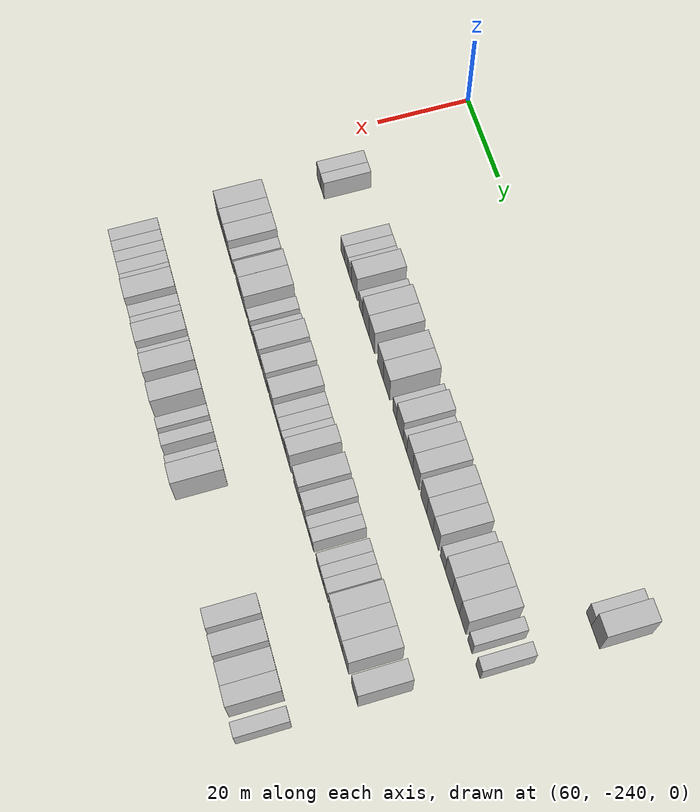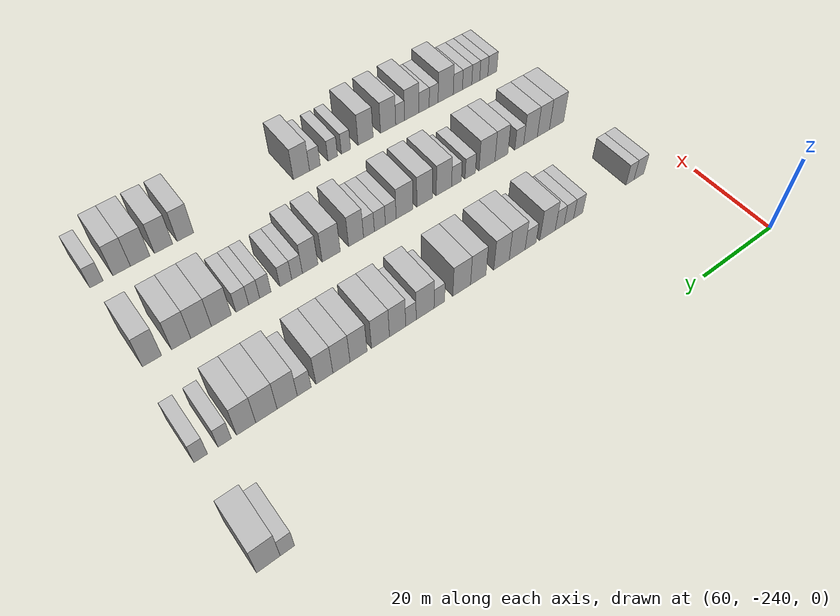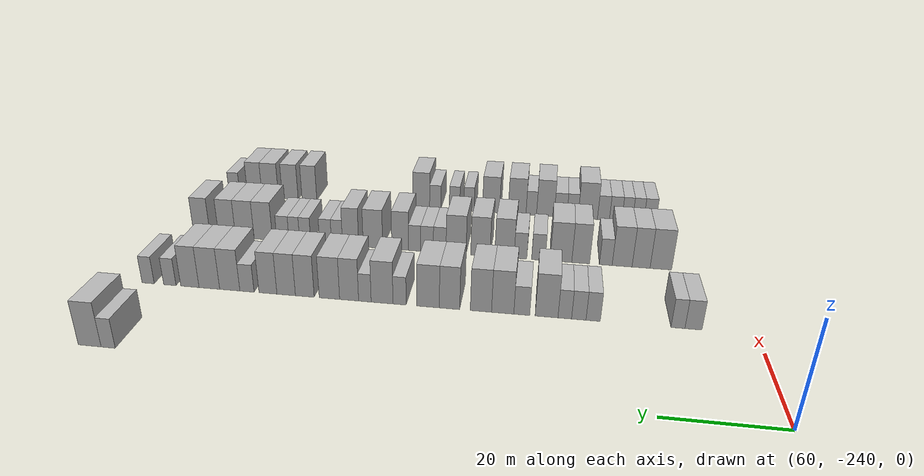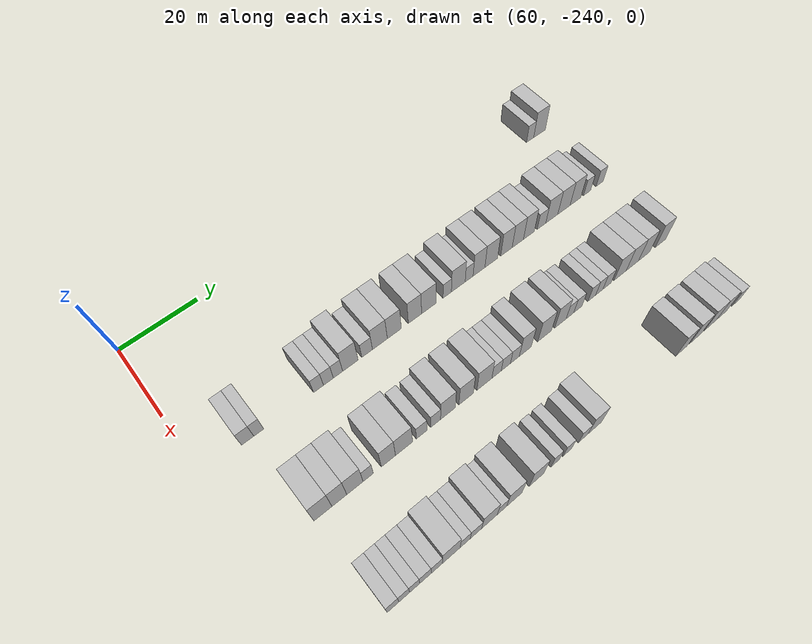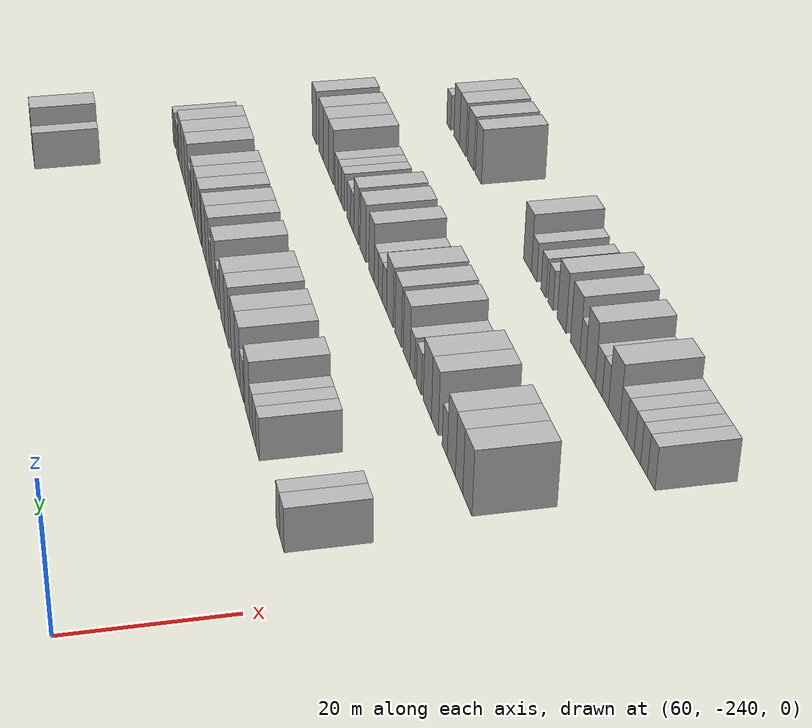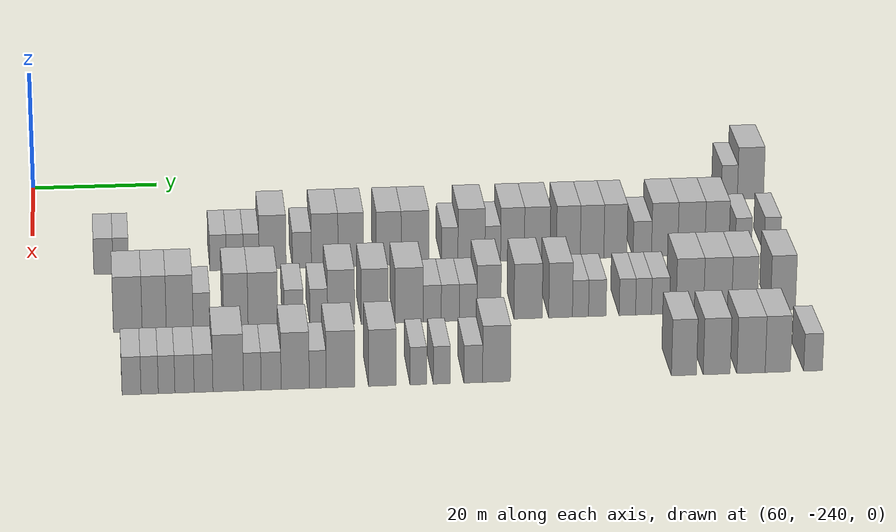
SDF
<sdf version="1.6">
 <world name="default">
  <model name="building_447">
   <static>1</static>
   <pose>69.0000 -127.5597 0 0.000000 0.000000 0.000000</pose>
   <link name="link">
    <pose>0 0 3.00 0 0 0</pose>
    <collision name="collision"><geometry><box><size>10.0000 2.6328 6.0000</size></box></geometry></collision>
    <visual name="visual">
     <cast_shadows>0</cast_shadows>
     <geometry><box><size>10.0000 2.6328 6.0000</size></box></geometry>
     <material>
      <script>
       <uri>model://HANNAS_wall/materials/scripts</uri>
       <uri>model://HANNAS_wall/materials/textures</uri>
       <name>vrc/HANNAS_wall</name>
      </script>
     </material>
    </visual>
   </link>
  </model>
  <model name="building_448">
   <static>1</static>
   <pose>69.0000 -124.0990 0 0.000000 0.000000 0.000000</pose>
   <link name="link">
    <pose>0 0 4.50 0 0 0</pose>
    <collision name="collision"><geometry><box><size>10.0000 4.2888 9.0000</size></box></geometry></collision>
    <visual name="visual">
     <cast_shadows>0</cast_shadows>
     <geometry><box><size>10.0000 4.2888 9.0000</size></box></geometry>
     <material>
      <script>
       <uri>model://HANNAS_wall/materials/scripts</uri>
       <uri>model://HANNAS_wall/materials/textures</uri>
       <name>vrc/HANNAS_wall</name>
      </script>
     </material>
    </visual>
   </link>
  </model>
  <model name="building_606">
   <static>1</static>
   <pose>91.0000 -228.9988 0 0.000000 0.000000 0.000000</pose>
   <link name="link">
    <pose>0 0 3.00 0 0 0</pose>
    <collision name="collision"><geometry><box><size>10.0000 2.9796 6.0000</size></box></geometry></collision>
    <visual name="visual">
     <cast_shadows>0</cast_shadows>
     <geometry><box><size>10.0000 2.9796 6.0000</size></box></geometry>
     <material>
      <script>
       <uri>model://HANNAS_wall/materials/scripts</uri>
       <uri>model://HANNAS_wall/materials/textures</uri>
       <name>vrc/HANNAS_wall</name>
      </script>
     </material>
    </visual>
   </link>
  </model>
  <model name="building_607">
   <static>1</static>
   <pose>91.0000 -226.2939 0 0.000000 0.000000 0.000000</pose>
   <link name="link">
    <pose>0 0 3.00 0 0 0</pose>
    <collision name="collision"><geometry><box><size>10.0000 2.4302 6.0000</size></box></geometry></collision>
    <visual name="visual">
     <cast_shadows>0</cast_shadows>
     <geometry><box><size>10.0000 2.4302 6.0000</size></box></geometry>
     <material>
      <script>
       <uri>model://HANNAS_wall/materials/scripts</uri>
       <uri>model://HANNAS_wall/materials/textures</uri>
       <name>vrc/HANNAS_wall</name>
      </script>
     </material>
    </visual>
   </link>
  </model>
  <model name="building_608">
   <static>1</static>
   <pose>91.0000 -211.2107 0 0.000000 0.000000 0.000000</pose>
   <link name="link">
    <pose>0 0 3.00 0 0 0</pose>
    <collision name="collision"><geometry><box><size>10.0000 2.5787 6.0000</size></box></geometry></collision>
    <visual name="visual">
     <cast_shadows>0</cast_shadows>
     <geometry><box><size>10.0000 2.5787 6.0000</size></box></geometry>
     <material>
      <script>
       <uri>model://HANNAS_wall/materials/scripts</uri>
       <uri>model://HANNAS_wall/materials/textures</uri>
       <name>vrc/HANNAS_wall</name>
      </script>
     </material>
    </visual>
   </link>
  </model>
  <model name="building_609">
   <static>1</static>
   <pose>91.0000 -208.6114 0 0.000000 0.000000 0.000000</pose>
   <link name="link">
    <pose>0 0 3.00 0 0 0</pose>
    <collision name="collision"><geometry><box><size>10.0000 2.6199 6.0000</size></box></geometry></collision>
    <visual name="visual">
     <cast_shadows>0</cast_shadows>
     <geometry><box><size>10.0000 2.6199 6.0000</size></box></geometry>
     <material>
      <script>
       <uri>model://HANNAS_wall/materials/scripts</uri>
       <uri>model://HANNAS_wall/materials/textures</uri>
       <name>vrc/HANNAS_wall</name>
      </script>
     </material>
    </visual>
   </link>
  </model>
  <model name="building_610">
   <static>1</static>
   <pose>91.0000 -206.0637 0 0.000000 0.000000 0.000000</pose>
   <link name="link">
    <pose>0 0 3.00 0 0 0</pose>
    <collision name="collision"><geometry><box><size>10.0000 2.4756 6.0000</size></box></geometry></collision>
    <visual name="visual">
     <cast_shadows>0</cast_shadows>
     <geometry><box><size>10.0000 2.4756 6.0000</size></box></geometry>
     <material>
      <script>
       <uri>model://HANNAS_wall/materials/scripts</uri>
       <uri>model://HANNAS_wall/materials/textures</uri>
       <name>vrc/HANNAS_wall</name>
      </script>
     </material>
    </visual>
   </link>
  </model>
  <model name="building_611">
   <static>1</static>
   <pose>91.0000 -202.7370 0 0.000000 0.000000 0.000000</pose>
   <link name="link">
    <pose>0 0 4.50 0 0 0</pose>
    <collision name="collision"><geometry><box><size>10.0000 4.1777 9.0000</size></box></geometry></collision>
    <visual name="visual">
     <cast_shadows>0</cast_shadows>
     <geometry><box><size>10.0000 4.1777 9.0000</size></box></geometry>
     <material>
      <script>
       <uri>model://HANNAS_wall/materials/scripts</uri>
       <uri>model://HANNAS_wall/materials/textures</uri>
       <name>vrc/HANNAS_wall</name>
      </script>
     </material>
    </visual>
   </link>
  </model>
  <model name="building_612">
   <static>1</static>
   <pose>91.0000 -198.1761 0 0.000000 0.000000 0.000000</pose>
   <link name="link">
    <pose>0 0 3.00 0 0 0</pose>
    <collision name="collision"><geometry><box><size>10.0000 2.9441 6.0000</size></box></geometry></collision>
    <visual name="visual">
     <cast_shadows>0</cast_shadows>
     <geometry><box><size>10.0000 2.9441 6.0000</size></box></geometry>
     <material>
      <script>
       <uri>model://HANNAS_wall/materials/scripts</uri>
       <uri>model://HANNAS_wall/materials/textures</uri>
       <name>vrc/HANNAS_wall</name>
      </script>
     </material>
    </visual>
   </link>
  </model>
  <model name="building_613">
   <static>1</static>
   <pose>91.0000 -194.6259 0 0.000000 0.000000 0.000000</pose>
   <link name="link">
    <pose>0 0 4.50 0 0 0</pose>
    <collision name="collision"><geometry><box><size>10.0000 4.1564 9.0000</size></box></geometry></collision>
    <visual name="visual">
     <cast_shadows>0</cast_shadows>
     <geometry><box><size>10.0000 4.1564 9.0000</size></box></geometry>
     <material>
      <script>
       <uri>model://HANNAS_wall/materials/scripts</uri>
       <uri>model://HANNAS_wall/materials/textures</uri>
       <name>vrc/HANNAS_wall</name>
      </script>
     </material>
    </visual>
   </link>
  </model>
  <model name="building_614">
   <static>1</static>
   <pose>91.0000 -190.5553 0 0.000000 0.000000 0.000000</pose>
   <link name="link">
    <pose>0 0 4.50 0 0 0</pose>
    <collision name="collision"><geometry><box><size>10.0000 3.9848 9.0000</size></box></geometry></collision>
    <visual name="visual">
     <cast_shadows>0</cast_shadows>
     <geometry><box><size>10.0000 3.9848 9.0000</size></box></geometry>
     <material>
      <script>
       <uri>model://HANNAS_wall/materials/scripts</uri>
       <uri>model://HANNAS_wall/materials/textures</uri>
       <name>vrc/HANNAS_wall</name>
      </script>
     </material>
    </visual>
   </link>
  </model>
  <model name="building_615">
   <static>1</static>
   <pose>91.0000 -184.6290 0 0.000000 0.000000 0.000000</pose>
   <link name="link">
    <pose>0 0 4.50 0 0 0</pose>
    <collision name="collision"><geometry><box><size>10.0000 3.8677 9.0000</size></box></geometry></collision>
    <visual name="visual">
     <cast_shadows>0</cast_shadows>
     <geometry><box><size>10.0000 3.8677 9.0000</size></box></geometry>
     <material>
      <script>
       <uri>model://HANNAS_wall/materials/scripts</uri>
       <uri>model://HANNAS_wall/materials/textures</uri>
       <name>vrc/HANNAS_wall</name>
      </script>
     </material>
    </visual>
   </link>
  </model>
  <model name="building_616">
   <static>1</static>
   <pose>91.0000 -180.5141 0 0.000000 0.000000 0.000000</pose>
   <link name="link">
    <pose>0 0 4.50 0 0 0</pose>
    <collision name="collision"><geometry><box><size>10.0000 4.3622 9.0000</size></box></geometry></collision>
    <visual name="visual">
     <cast_shadows>0</cast_shadows>
     <geometry><box><size>10.0000 4.3622 9.0000</size></box></geometry>
     <material>
      <script>
       <uri>model://HANNAS_wall/materials/scripts</uri>
       <uri>model://HANNAS_wall/materials/textures</uri>
       <name>vrc/HANNAS_wall</name>
      </script>
     </material>
    </visual>
   </link>
  </model>
  <model name="building_617">
   <static>1</static>
   <pose>91.0000 -175.0640 0 0.000000 0.000000 0.000000</pose>
   <link name="link">
    <pose>0 0 3.00 0 0 0</pose>
    <collision name="collision"><geometry><box><size>10.0000 2.5380 6.0000</size></box></geometry></collision>
    <visual name="visual">
     <cast_shadows>0</cast_shadows>
     <geometry><box><size>10.0000 2.5380 6.0000</size></box></geometry>
     <material>
      <script>
       <uri>model://HANNAS_wall/materials/scripts</uri>
       <uri>model://HANNAS_wall/materials/textures</uri>
       <name>vrc/HANNAS_wall</name>
      </script>
     </material>
    </visual>
   </link>
  </model>
  <model name="building_618">
   <static>1</static>
   <pose>91.0000 -171.6782 0 0.000000 0.000000 0.000000</pose>
   <link name="link">
    <pose>0 0 4.50 0 0 0</pose>
    <collision name="collision"><geometry><box><size>10.0000 4.2336 9.0000</size></box></geometry></collision>
    <visual name="visual">
     <cast_shadows>0</cast_shadows>
     <geometry><box><size>10.0000 4.2336 9.0000</size></box></geometry>
     <material>
      <script>
       <uri>model://HANNAS_wall/materials/scripts</uri>
       <uri>model://HANNAS_wall/materials/textures</uri>
       <name>vrc/HANNAS_wall</name>
      </script>
     </material>
    </visual>
   </link>
  </model>
  <model name="building_619">
   <static>1</static>
   <pose>91.0000 -168.3328 0 0.000000 0.000000 0.000000</pose>
   <link name="link">
    <pose>0 0 3.00 0 0 0</pose>
    <collision name="collision"><geometry><box><size>10.0000 2.4574 6.0000</size></box></geometry></collision>
    <visual name="visual">
     <cast_shadows>0</cast_shadows>
     <geometry><box><size>10.0000 2.4574 6.0000</size></box></geometry>
     <material>
      <script>
       <uri>model://HANNAS_wall/materials/scripts</uri>
       <uri>model://HANNAS_wall/materials/textures</uri>
       <name>vrc/HANNAS_wall</name>
      </script>
     </material>
    </visual>
   </link>
  </model>
  <model name="building_620">
   <static>1</static>
   <pose>91.0000 -165.2411 0 0.000000 0.000000 0.000000</pose>
   <link name="link">
    <pose>0 0 4.50 0 0 0</pose>
    <collision name="collision"><geometry><box><size>10.0000 3.7260 9.0000</size></box></geometry></collision>
    <visual name="visual">
     <cast_shadows>0</cast_shadows>
     <geometry><box><size>10.0000 3.7260 9.0000</size></box></geometry>
     <material>
      <script>
       <uri>model://HANNAS_wall/materials/scripts</uri>
       <uri>model://HANNAS_wall/materials/textures</uri>
       <name>vrc/HANNAS_wall</name>
      </script>
     </material>
    </visual>
   </link>
  </model>
  <model name="building_621">
   <static>1</static>
   <pose>91.0000 -161.3560 0 0.000000 0.000000 0.000000</pose>
   <link name="link">
    <pose>0 0 4.50 0 0 0</pose>
    <collision name="collision"><geometry><box><size>10.0000 4.0442 9.0000</size></box></geometry></collision>
    <visual name="visual">
     <cast_shadows>0</cast_shadows>
     <geometry><box><size>10.0000 4.0442 9.0000</size></box></geometry>
     <material>
      <script>
       <uri>model://HANNAS_wall/materials/scripts</uri>
       <uri>model://HANNAS_wall/materials/textures</uri>
       <name>vrc/HANNAS_wall</name>
      </script>
     </material>
    </visual>
   </link>
  </model>
  <model name="building_622">
   <static>1</static>
   <pose>91.0000 -156.4585 0 0.000000 0.000000 0.000000</pose>
   <link name="link">
    <pose>0 0 4.50 0 0 0</pose>
    <collision name="collision"><geometry><box><size>10.0000 3.7508 9.0000</size></box></geometry></collision>
    <visual name="visual">
     <cast_shadows>0</cast_shadows>
     <geometry><box><size>10.0000 3.7508 9.0000</size></box></geometry>
     <material>
      <script>
       <uri>model://HANNAS_wall/materials/scripts</uri>
       <uri>model://HANNAS_wall/materials/textures</uri>
       <name>vrc/HANNAS_wall</name>
      </script>
     </material>
    </visual>
   </link>
  </model>
  <model name="building_623">
   <static>1</static>
   <pose>91.0000 -152.7215 0 0.000000 0.000000 0.000000</pose>
   <link name="link">
    <pose>0 0 4.50 0 0 0</pose>
    <collision name="collision"><geometry><box><size>10.0000 3.7233 9.0000</size></box></geometry></collision>
    <visual name="visual">
     <cast_shadows>0</cast_shadows>
     <geometry><box><size>10.0000 3.7233 9.0000</size></box></geometry>
     <material>
      <script>
       <uri>model://HANNAS_wall/materials/scripts</uri>
       <uri>model://HANNAS_wall/materials/textures</uri>
       <name>vrc/HANNAS_wall</name>
      </script>
     </material>
    </visual>
   </link>
  </model>
  <model name="building_624">
   <static>1</static>
   <pose>91.0000 -149.0450 0 0.000000 0.000000 0.000000</pose>
   <link name="link">
    <pose>0 0 4.50 0 0 0</pose>
    <collision name="collision"><geometry><box><size>10.0000 3.6298 9.0000</size></box></geometry></collision>
    <visual name="visual">
     <cast_shadows>0</cast_shadows>
     <geometry><box><size>10.0000 3.6298 9.0000</size></box></geometry>
     <material>
      <script>
       <uri>model://HANNAS_wall/materials/scripts</uri>
       <uri>model://HANNAS_wall/materials/textures</uri>
       <name>vrc/HANNAS_wall</name>
      </script>
     </material>
    </visual>
   </link>
  </model>
  <model name="building_625">
   <static>1</static>
   <pose>91.0000 -144.7831 0 0.000000 0.000000 0.000000</pose>
   <link name="link">
    <pose>0 0 3.00 0 0 0</pose>
    <collision name="collision"><geometry><box><size>10.0000 2.8939 6.0000</size></box></geometry></collision>
    <visual name="visual">
     <cast_shadows>0</cast_shadows>
     <geometry><box><size>10.0000 2.8939 6.0000</size></box></geometry>
     <material>
      <script>
       <uri>model://HANNAS_wall/materials/scripts</uri>
       <uri>model://HANNAS_wall/materials/textures</uri>
       <name>vrc/HANNAS_wall</name>
      </script>
     </material>
    </visual>
   </link>
  </model>
  <model name="building_626">
   <static>1</static>
   <pose>91.0000 -141.2596 0 0.000000 0.000000 0.000000</pose>
   <link name="link">
    <pose>0 0 4.50 0 0 0</pose>
    <collision name="collision"><geometry><box><size>10.0000 4.1532 9.0000</size></box></geometry></collision>
    <visual name="visual">
     <cast_shadows>0</cast_shadows>
     <geometry><box><size>10.0000 4.1532 9.0000</size></box></geometry>
     <material>
      <script>
       <uri>model://HANNAS_wall/materials/scripts</uri>
       <uri>model://HANNAS_wall/materials/textures</uri>
       <name>vrc/HANNAS_wall</name>
      </script>
     </material>
    </visual>
   </link>
  </model>
  <model name="building_627">
   <static>1</static>
   <pose>91.0000 -137.0448 0 0.000000 0.000000 0.000000</pose>
   <link name="link">
    <pose>0 0 4.50 0 0 0</pose>
    <collision name="collision"><geometry><box><size>10.0000 4.2763 9.0000</size></box></geometry></collision>
    <visual name="visual">
     <cast_shadows>0</cast_shadows>
     <geometry><box><size>10.0000 4.2763 9.0000</size></box></geometry>
     <material>
      <script>
       <uri>model://HANNAS_wall/materials/scripts</uri>
       <uri>model://HANNAS_wall/materials/textures</uri>
       <name>vrc/HANNAS_wall</name>
      </script>
     </material>
    </visual>
   </link>
  </model>
  <model name="building_628">
   <static>1</static>
   <pose>91.0000 -133.0051 0 0.000000 0.000000 0.000000</pose>
   <link name="link">
    <pose>0 0 4.50 0 0 0</pose>
    <collision name="collision"><geometry><box><size>10.0000 3.8031 9.0000</size></box></geometry></collision>
    <visual name="visual">
     <cast_shadows>0</cast_shadows>
     <geometry><box><size>10.0000 3.8031 9.0000</size></box></geometry>
     <material>
      <script>
       <uri>model://HANNAS_wall/materials/scripts</uri>
       <uri>model://HANNAS_wall/materials/textures</uri>
       <name>vrc/HANNAS_wall</name>
      </script>
     </material>
    </visual>
   </link>
  </model>
  <model name="building_629">
   <static>1</static>
   <pose>91.0000 -128.8083 0 0.000000 0.000000 0.000000</pose>
   <link name="link">
    <pose>0 0 3.00 0 0 0</pose>
    <collision name="collision"><geometry><box><size>10.0000 2.5906 6.0000</size></box></geometry></collision>
    <visual name="visual">
     <cast_shadows>0</cast_shadows>
     <geometry><box><size>10.0000 2.5906 6.0000</size></box></geometry>
     <material>
      <script>
       <uri>model://HANNAS_wall/materials/scripts</uri>
       <uri>model://HANNAS_wall/materials/textures</uri>
       <name>vrc/HANNAS_wall</name>
      </script>
     </material>
    </visual>
   </link>
  </model>
  <model name="building_630">
   <static>1</static>
   <pose>91.0000 -124.2265 0 0.000000 0.000000 0.000000</pose>
   <link name="link">
    <pose>0 0 3.00 0 0 0</pose>
    <collision name="collision"><geometry><box><size>10.0000 2.5730 6.0000</size></box></geometry></collision>
    <visual name="visual">
     <cast_shadows>0</cast_shadows>
     <geometry><box><size>10.0000 2.5730 6.0000</size></box></geometry>
     <material>
      <script>
       <uri>model://HANNAS_wall/materials/scripts</uri>
       <uri>model://HANNAS_wall/materials/textures</uri>
       <name>vrc/HANNAS_wall</name>
      </script>
     </material>
    </visual>
   </link>
  </model>
  <model name="building_782">
   <static>1</static>
   <pose>113.0000 -225.6067 0 0.000000 0.000000 0.000000</pose>
   <link name="link">
    <pose>0 0 4.50 0 0 0</pose>
    <collision name="collision"><geometry><box><size>10.0000 4.3132 9.0000</size></box></geometry></collision>
    <visual name="visual">
     <cast_shadows>0</cast_shadows>
     <geometry><box><size>10.0000 4.3132 9.0000</size></box></geometry>
     <material>
      <script>
       <uri>model://HANNAS_wall/materials/scripts</uri>
       <uri>model://HANNAS_wall/materials/textures</uri>
       <name>vrc/HANNAS_wall</name>
      </script>
     </material>
    </visual>
   </link>
  </model>
  <model name="building_783">
   <static>1</static>
   <pose>113.0000 -221.6424 0 0.000000 0.000000 0.000000</pose>
   <link name="link">
    <pose>0 0 4.50 0 0 0</pose>
    <collision name="collision"><geometry><box><size>10.0000 3.6153 9.0000</size></box></geometry></collision>
    <visual name="visual">
     <cast_shadows>0</cast_shadows>
     <geometry><box><size>10.0000 3.6153 9.0000</size></box></geometry>
     <material>
      <script>
       <uri>model://HANNAS_wall/materials/scripts</uri>
       <uri>model://HANNAS_wall/materials/textures</uri>
       <name>vrc/HANNAS_wall</name>
      </script>
     </material>
    </visual>
   </link>
  </model>
  <model name="building_784">
   <static>1</static>
   <pose>113.0000 -217.8203 0 0.000000 0.000000 0.000000</pose>
   <link name="link">
    <pose>0 0 4.50 0 0 0</pose>
    <collision name="collision"><geometry><box><size>10.0000 4.0289 9.0000</size></box></geometry></collision>
    <visual name="visual">
     <cast_shadows>0</cast_shadows>
     <geometry><box><size>10.0000 4.0289 9.0000</size></box></geometry>
     <material>
      <script>
       <uri>model://HANNAS_wall/materials/scripts</uri>
       <uri>model://HANNAS_wall/materials/textures</uri>
       <name>vrc/HANNAS_wall</name>
      </script>
     </material>
    </visual>
   </link>
  </model>
  <model name="building_785">
   <static>1</static>
   <pose>113.0000 -214.5127 0 0.000000 0.000000 0.000000</pose>
   <link name="link">
    <pose>0 0 3.00 0 0 0</pose>
    <collision name="collision"><geometry><box><size>10.0000 2.5864 6.0000</size></box></geometry></collision>
    <visual name="visual">
     <cast_shadows>0</cast_shadows>
     <geometry><box><size>10.0000 2.5864 6.0000</size></box></geometry>
     <material>
      <script>
       <uri>model://HANNAS_wall/materials/scripts</uri>
       <uri>model://HANNAS_wall/materials/textures</uri>
       <name>vrc/HANNAS_wall</name>
      </script>
     </material>
    </visual>
   </link>
  </model>
  <model name="building_786">
   <static>1</static>
   <pose>113.0000 -209.3859 0 0.000000 0.000000 0.000000</pose>
   <link name="link">
    <pose>0 0 4.50 0 0 0</pose>
    <collision name="collision"><geometry><box><size>10.0000 3.6671 9.0000</size></box></geometry></collision>
    <visual name="visual">
     <cast_shadows>0</cast_shadows>
     <geometry><box><size>10.0000 3.6671 9.0000</size></box></geometry>
     <material>
      <script>
       <uri>model://HANNAS_wall/materials/scripts</uri>
       <uri>model://HANNAS_wall/materials/textures</uri>
       <name>vrc/HANNAS_wall</name>
      </script>
     </material>
    </visual>
   </link>
  </model>
  <model name="building_787">
   <static>1</static>
   <pose>113.0000 -205.3183 0 0.000000 0.000000 0.000000</pose>
   <link name="link">
    <pose>0 0 4.50 0 0 0</pose>
    <collision name="collision"><geometry><box><size>10.0000 4.4680 9.0000</size></box></geometry></collision>
    <visual name="visual">
     <cast_shadows>0</cast_shadows>
     <geometry><box><size>10.0000 4.4680 9.0000</size></box></geometry>
     <material>
      <script>
       <uri>model://HANNAS_wall/materials/scripts</uri>
       <uri>model://HANNAS_wall/materials/textures</uri>
       <name>vrc/HANNAS_wall</name>
      </script>
     </material>
    </visual>
   </link>
  </model>
  <model name="building_788">
   <static>1</static>
   <pose>113.0000 -200.6625 0 0.000000 0.000000 0.000000</pose>
   <link name="link">
    <pose>0 0 3.00 0 0 0</pose>
    <collision name="collision"><geometry><box><size>10.0000 2.8437 6.0000</size></box></geometry></collision>
    <visual name="visual">
     <cast_shadows>0</cast_shadows>
     <geometry><box><size>10.0000 2.8437 6.0000</size></box></geometry>
     <material>
      <script>
       <uri>model://HANNAS_wall/materials/scripts</uri>
       <uri>model://HANNAS_wall/materials/textures</uri>
       <name>vrc/HANNAS_wall</name>
      </script>
     </material>
    </visual>
   </link>
  </model>
  <model name="building_789">
   <static>1</static>
   <pose>113.0000 -196.9040 0 0.000000 0.000000 0.000000</pose>
   <link name="link">
    <pose>0 0 3.00 0 0 0</pose>
    <collision name="collision"><geometry><box><size>10.0000 2.6733 6.0000</size></box></geometry></collision>
    <visual name="visual">
     <cast_shadows>0</cast_shadows>
     <geometry><box><size>10.0000 2.6733 6.0000</size></box></geometry>
     <material>
      <script>
       <uri>model://HANNAS_wall/materials/scripts</uri>
       <uri>model://HANNAS_wall/materials/textures</uri>
       <name>vrc/HANNAS_wall</name>
      </script>
     </material>
    </visual>
   </link>
  </model>
  <model name="building_790">
   <static>1</static>
   <pose>113.0000 -193.5267 0 0.000000 0.000000 0.000000</pose>
   <link name="link">
    <pose>0 0 4.50 0 0 0</pose>
    <collision name="collision"><geometry><box><size>10.0000 4.0813 9.0000</size></box></geometry></collision>
    <visual name="visual">
     <cast_shadows>0</cast_shadows>
     <geometry><box><size>10.0000 4.0813 9.0000</size></box></geometry>
     <material>
      <script>
       <uri>model://HANNAS_wall/materials/scripts</uri>
       <uri>model://HANNAS_wall/materials/textures</uri>
       <name>vrc/HANNAS_wall</name>
      </script>
     </material>
    </visual>
   </link>
  </model>
  <model name="building_791">
   <static>1</static>
   <pose>113.0000 -188.4447 0 0.000000 0.000000 0.000000</pose>
   <link name="link">
    <pose>0 0 4.50 0 0 0</pose>
    <collision name="collision"><geometry><box><size>10.0000 4.0827 9.0000</size></box></geometry></collision>
    <visual name="visual">
     <cast_shadows>0</cast_shadows>
     <geometry><box><size>10.0000 4.0827 9.0000</size></box></geometry>
     <material>
      <script>
       <uri>model://HANNAS_wall/materials/scripts</uri>
       <uri>model://HANNAS_wall/materials/textures</uri>
       <name>vrc/HANNAS_wall</name>
      </script>
     </material>
    </visual>
   </link>
  </model>
  <model name="building_792">
   <static>1</static>
   <pose>113.0000 -183.2504 0 0.000000 0.000000 0.000000</pose>
   <link name="link">
    <pose>0 0 4.50 0 0 0</pose>
    <collision name="collision"><geometry><box><size>10.0000 4.3058 9.0000</size></box></geometry></collision>
    <visual name="visual">
     <cast_shadows>0</cast_shadows>
     <geometry><box><size>10.0000 4.3058 9.0000</size></box></geometry>
     <material>
      <script>
       <uri>model://HANNAS_wall/materials/scripts</uri>
       <uri>model://HANNAS_wall/materials/textures</uri>
       <name>vrc/HANNAS_wall</name>
      </script>
     </material>
    </visual>
   </link>
  </model>
  <model name="building_793">
   <static>1</static>
   <pose>113.0000 -179.7383 0 0.000000 0.000000 0.000000</pose>
   <link name="link">
    <pose>0 0 3.00 0 0 0</pose>
    <collision name="collision"><geometry><box><size>10.0000 2.7184 6.0000</size></box></geometry></collision>
    <visual name="visual">
     <cast_shadows>0</cast_shadows>
     <geometry><box><size>10.0000 2.7184 6.0000</size></box></geometry>
     <material>
      <script>
       <uri>model://HANNAS_wall/materials/scripts</uri>
       <uri>model://HANNAS_wall/materials/textures</uri>
       <name>vrc/HANNAS_wall</name>
      </script>
     </material>
    </visual>
   </link>
  </model>
  <model name="building_794">
   <static>1</static>
   <pose>113.0000 -177.0096 0 0.000000 0.000000 0.000000</pose>
   <link name="link">
    <pose>0 0 3.00 0 0 0</pose>
    <collision name="collision"><geometry><box><size>10.0000 2.7390 6.0000</size></box></geometry></collision>
    <visual name="visual">
     <cast_shadows>0</cast_shadows>
     <geometry><box><size>10.0000 2.7390 6.0000</size></box></geometry>
     <material>
      <script>
       <uri>model://HANNAS_wall/materials/scripts</uri>
       <uri>model://HANNAS_wall/materials/textures</uri>
       <name>vrc/HANNAS_wall</name>
      </script>
     </material>
    </visual>
   </link>
  </model>
  <model name="building_795">
   <static>1</static>
   <pose>113.0000 -174.3078 0 0.000000 0.000000 0.000000</pose>
   <link name="link">
    <pose>0 0 3.00 0 0 0</pose>
    <collision name="collision"><geometry><box><size>10.0000 2.6647 6.0000</size></box></geometry></collision>
    <visual name="visual">
     <cast_shadows>0</cast_shadows>
     <geometry><box><size>10.0000 2.6647 6.0000</size></box></geometry>
     <material>
      <script>
       <uri>model://HANNAS_wall/materials/scripts</uri>
       <uri>model://HANNAS_wall/materials/textures</uri>
       <name>vrc/HANNAS_wall</name>
      </script>
     </material>
    </visual>
   </link>
  </model>
  <model name="building_796">
   <static>1</static>
   <pose>113.0000 -171.1560 0 0.000000 0.000000 0.000000</pose>
   <link name="link">
    <pose>0 0 4.50 0 0 0</pose>
    <collision name="collision"><geometry><box><size>10.0000 3.6389 9.0000</size></box></geometry></collision>
    <visual name="visual">
     <cast_shadows>0</cast_shadows>
     <geometry><box><size>10.0000 3.6389 9.0000</size></box></geometry>
     <material>
      <script>
       <uri>model://HANNAS_wall/materials/scripts</uri>
       <uri>model://HANNAS_wall/materials/textures</uri>
       <name>vrc/HANNAS_wall</name>
      </script>
     </material>
    </visual>
   </link>
  </model>
  <model name="building_797">
   <static>1</static>
   <pose>113.0000 -165.1985 0 0.000000 0.000000 0.000000</pose>
   <link name="link">
    <pose>0 0 4.50 0 0 0</pose>
    <collision name="collision"><geometry><box><size>10.0000 4.2761 9.0000</size></box></geometry></collision>
    <visual name="visual">
     <cast_shadows>0</cast_shadows>
     <geometry><box><size>10.0000 4.2761 9.0000</size></box></geometry>
     <material>
      <script>
       <uri>model://HANNAS_wall/materials/scripts</uri>
       <uri>model://HANNAS_wall/materials/textures</uri>
       <name>vrc/HANNAS_wall</name>
      </script>
     </material>
    </visual>
   </link>
  </model>
  <model name="building_798">
   <static>1</static>
   <pose>113.0000 -160.2560 0 0.000000 0.000000 0.000000</pose>
   <link name="link">
    <pose>0 0 4.50 0 0 0</pose>
    <collision name="collision"><geometry><box><size>10.0000 3.6089 9.0000</size></box></geometry></collision>
    <visual name="visual">
     <cast_shadows>0</cast_shadows>
     <geometry><box><size>10.0000 3.6089 9.0000</size></box></geometry>
     <material>
      <script>
       <uri>model://HANNAS_wall/materials/scripts</uri>
       <uri>model://HANNAS_wall/materials/textures</uri>
       <name>vrc/HANNAS_wall</name>
      </script>
     </material>
    </visual>
   </link>
  </model>
  <model name="building_799">
   <static>1</static>
   <pose>113.0000 -157.2279 0 0.000000 0.000000 0.000000</pose>
   <link name="link">
    <pose>0 0 3.00 0 0 0</pose>
    <collision name="collision"><geometry><box><size>10.0000 2.4473 6.0000</size></box></geometry></collision>
    <visual name="visual">
     <cast_shadows>0</cast_shadows>
     <geometry><box><size>10.0000 2.4473 6.0000</size></box></geometry>
     <material>
      <script>
       <uri>model://HANNAS_wall/materials/scripts</uri>
       <uri>model://HANNAS_wall/materials/textures</uri>
       <name>vrc/HANNAS_wall</name>
      </script>
     </material>
    </visual>
   </link>
  </model>
  <model name="building_800">
   <static>1</static>
   <pose>113.0000 -154.6658 0 0.000000 0.000000 0.000000</pose>
   <link name="link">
    <pose>0 0 3.00 0 0 0</pose>
    <collision name="collision"><geometry><box><size>10.0000 2.6768 6.0000</size></box></geometry></collision>
    <visual name="visual">
     <cast_shadows>0</cast_shadows>
     <geometry><box><size>10.0000 2.6768 6.0000</size></box></geometry>
     <material>
      <script>
       <uri>model://HANNAS_wall/materials/scripts</uri>
       <uri>model://HANNAS_wall/materials/textures</uri>
       <name>vrc/HANNAS_wall</name>
      </script>
     </material>
    </visual>
   </link>
  </model>
  <model name="building_801">
   <static>1</static>
   <pose>113.0000 -150.0764 0 0.000000 0.000000 0.000000</pose>
   <link name="link">
    <pose>0 0 3.00 0 0 0</pose>
    <collision name="collision"><geometry><box><size>10.0000 2.5020 6.0000</size></box></geometry></collision>
    <visual name="visual">
     <cast_shadows>0</cast_shadows>
     <geometry><box><size>10.0000 2.5020 6.0000</size></box></geometry>
     <material>
      <script>
       <uri>model://HANNAS_wall/materials/scripts</uri>
       <uri>model://HANNAS_wall/materials/textures</uri>
       <name>vrc/HANNAS_wall</name>
      </script>
     </material>
    </visual>
   </link>
  </model>
  <model name="building_802">
   <static>1</static>
   <pose>113.0000 -147.6173 0 0.000000 0.000000 0.000000</pose>
   <link name="link">
    <pose>0 0 3.00 0 0 0</pose>
    <collision name="collision"><geometry><box><size>10.0000 2.4162 6.0000</size></box></geometry></collision>
    <visual name="visual">
     <cast_shadows>0</cast_shadows>
     <geometry><box><size>10.0000 2.4162 6.0000</size></box></geometry>
     <material>
      <script>
       <uri>model://HANNAS_wall/materials/scripts</uri>
       <uri>model://HANNAS_wall/materials/textures</uri>
       <name>vrc/HANNAS_wall</name>
      </script>
     </material>
    </visual>
   </link>
  </model>
  <model name="building_803">
   <static>1</static>
   <pose>113.0000 -145.0246 0 0.000000 0.000000 0.000000</pose>
   <link name="link">
    <pose>0 0 3.00 0 0 0</pose>
    <collision name="collision"><geometry><box><size>10.0000 2.7693 6.0000</size></box></geometry></collision>
    <visual name="visual">
     <cast_shadows>0</cast_shadows>
     <geometry><box><size>10.0000 2.7693 6.0000</size></box></geometry>
     <material>
      <script>
       <uri>model://HANNAS_wall/materials/scripts</uri>
       <uri>model://HANNAS_wall/materials/textures</uri>
       <name>vrc/HANNAS_wall</name>
      </script>
     </material>
    </visual>
   </link>
  </model>
  <model name="building_804">
   <static>1</static>
   <pose>113.0000 -140.5303 0 0.000000 0.000000 0.000000</pose>
   <link name="link">
    <pose>0 0 4.50 0 0 0</pose>
    <collision name="collision"><geometry><box><size>10.0000 4.2193 9.0000</size></box></geometry></collision>
    <visual name="visual">
     <cast_shadows>0</cast_shadows>
     <geometry><box><size>10.0000 4.2193 9.0000</size></box></geometry>
     <material>
      <script>
       <uri>model://HANNAS_wall/materials/scripts</uri>
       <uri>model://HANNAS_wall/materials/textures</uri>
       <name>vrc/HANNAS_wall</name>
      </script>
     </material>
    </visual>
   </link>
  </model>
  <model name="building_805">
   <static>1</static>
   <pose>113.0000 -136.2756 0 0.000000 0.000000 0.000000</pose>
   <link name="link">
    <pose>0 0 4.50 0 0 0</pose>
    <collision name="collision"><geometry><box><size>10.0000 4.2902 9.0000</size></box></geometry></collision>
    <visual name="visual">
     <cast_shadows>0</cast_shadows>
     <geometry><box><size>10.0000 4.2902 9.0000</size></box></geometry>
     <material>
      <script>
       <uri>model://HANNAS_wall/materials/scripts</uri>
       <uri>model://HANNAS_wall/materials/textures</uri>
       <name>vrc/HANNAS_wall</name>
      </script>
     </material>
    </visual>
   </link>
  </model>
  <model name="building_806">
   <static>1</static>
   <pose>113.0000 -132.1557 0 0.000000 0.000000 0.000000</pose>
   <link name="link">
    <pose>0 0 4.50 0 0 0</pose>
    <collision name="collision"><geometry><box><size>10.0000 3.9495 9.0000</size></box></geometry></collision>
    <visual name="visual">
     <cast_shadows>0</cast_shadows>
     <geometry><box><size>10.0000 3.9495 9.0000</size></box></geometry>
     <material>
      <script>
       <uri>model://HANNAS_wall/materials/scripts</uri>
       <uri>model://HANNAS_wall/materials/textures</uri>
       <name>vrc/HANNAS_wall</name>
      </script>
     </material>
    </visual>
   </link>
  </model>
  <model name="building_807">
   <static>1</static>
   <pose>113.0000 -126.2658 0 0.000000 0.000000 0.000000</pose>
   <link name="link">
    <pose>0 0 4.50 0 0 0</pose>
    <collision name="collision"><geometry><box><size>10.0000 3.8303 9.0000</size></box></geometry></collision>
    <visual name="visual">
     <cast_shadows>0</cast_shadows>
     <geometry><box><size>10.0000 3.8303 9.0000</size></box></geometry>
     <material>
      <script>
       <uri>model://HANNAS_wall/materials/scripts</uri>
       <uri>model://HANNAS_wall/materials/textures</uri>
       <name>vrc/HANNAS_wall</name>
      </script>
     </material>
    </visual>
   </link>
  </model>
  <model name="building_965">
   <static>1</static>
   <pose>135.0000 -225.4323 0 0.000000 0.000000 0.000000</pose>
   <link name="link">
    <pose>0 0 3.00 0 0 0</pose>
    <collision name="collision"><geometry><box><size>10.0000 2.7461 6.0000</size></box></geometry></collision>
    <visual name="visual">
     <cast_shadows>0</cast_shadows>
     <geometry><box><size>10.0000 2.7461 6.0000</size></box></geometry>
     <material>
      <script>
       <uri>model://HANNAS_wall/materials/scripts</uri>
       <uri>model://HANNAS_wall/materials/textures</uri>
       <name>vrc/HANNAS_wall</name>
      </script>
     </material>
    </visual>
   </link>
  </model>
  <model name="building_966">
   <static>1</static>
   <pose>135.0000 -222.8069 0 0.000000 0.000000 0.000000</pose>
   <link name="link">
    <pose>0 0 3.00 0 0 0</pose>
    <collision name="collision"><geometry><box><size>10.0000 2.5048 6.0000</size></box></geometry></collision>
    <visual name="visual">
     <cast_shadows>0</cast_shadows>
     <geometry><box><size>10.0000 2.5048 6.0000</size></box></geometry>
     <material>
      <script>
       <uri>model://HANNAS_wall/materials/scripts</uri>
       <uri>model://HANNAS_wall/materials/textures</uri>
       <name>vrc/HANNAS_wall</name>
      </script>
     </material>
    </visual>
   </link>
  </model>
  <model name="building_967">
   <static>1</static>
   <pose>135.0000 -220.3518 0 0.000000 0.000000 0.000000</pose>
   <link name="link">
    <pose>0 0 3.00 0 0 0</pose>
    <collision name="collision"><geometry><box><size>10.0000 2.4055 6.0000</size></box></geometry></collision>
    <visual name="visual">
     <cast_shadows>0</cast_shadows>
     <geometry><box><size>10.0000 2.4055 6.0000</size></box></geometry>
     <material>
      <script>
       <uri>model://HANNAS_wall/materials/scripts</uri>
       <uri>model://HANNAS_wall/materials/textures</uri>
       <name>vrc/HANNAS_wall</name>
      </script>
     </material>
    </visual>
   </link>
  </model>
  <model name="building_968">
   <static>1</static>
   <pose>135.0000 -217.7546 0 0.000000 0.000000 0.000000</pose>
   <link name="link">
    <pose>0 0 3.00 0 0 0</pose>
    <collision name="collision"><geometry><box><size>10.0000 2.7888 6.0000</size></box></geometry></collision>
    <visual name="visual">
     <cast_shadows>0</cast_shadows>
     <geometry><box><size>10.0000 2.7888 6.0000</size></box></geometry>
     <material>
      <script>
       <uri>model://HANNAS_wall/materials/scripts</uri>
       <uri>model://HANNAS_wall/materials/textures</uri>
       <name>vrc/HANNAS_wall</name>
      </script>
     </material>
    </visual>
   </link>
  </model>
  <model name="building_969">
   <static>1</static>
   <pose>135.0000 -214.9982 0 0.000000 0.000000 0.000000</pose>
   <link name="link">
    <pose>0 0 3.00 0 0 0</pose>
    <collision name="collision"><geometry><box><size>10.0000 2.7240 6.0000</size></box></geometry></collision>
    <visual name="visual">
     <cast_shadows>0</cast_shadows>
     <geometry><box><size>10.0000 2.7240 6.0000</size></box></geometry>
     <material>
      <script>
       <uri>model://HANNAS_wall/materials/scripts</uri>
       <uri>model://HANNAS_wall/materials/textures</uri>
       <name>vrc/HANNAS_wall</name>
      </script>
     </material>
    </visual>
   </link>
  </model>
  <model name="building_970">
   <static>1</static>
   <pose>135.0000 -211.4197 0 0.000000 0.000000 0.000000</pose>
   <link name="link">
    <pose>0 0 4.50 0 0 0</pose>
    <collision name="collision"><geometry><box><size>10.0000 4.4331 9.0000</size></box></geometry></collision>
    <visual name="visual">
     <cast_shadows>0</cast_shadows>
     <geometry><box><size>10.0000 4.4331 9.0000</size></box></geometry>
     <material>
      <script>
       <uri>model://HANNAS_wall/materials/scripts</uri>
       <uri>model://HANNAS_wall/materials/textures</uri>
       <name>vrc/HANNAS_wall</name>
      </script>
     </material>
    </visual>
   </link>
  </model>
  <model name="building_971">
   <static>1</static>
   <pose>135.0000 -207.9177 0 0.000000 0.000000 0.000000</pose>
   <link name="link">
    <pose>0 0 3.00 0 0 0</pose>
    <collision name="collision"><geometry><box><size>10.0000 2.5708 6.0000</size></box></geometry></collision>
    <visual name="visual">
     <cast_shadows>0</cast_shadows>
     <geometry><box><size>10.0000 2.5708 6.0000</size></box></geometry>
     <material>
      <script>
       <uri>model://HANNAS_wall/materials/scripts</uri>
       <uri>model://HANNAS_wall/materials/textures</uri>
       <name>vrc/HANNAS_wall</name>
      </script>
     </material>
    </visual>
   </link>
  </model>
  <model name="building_972">
   <static>1</static>
   <pose>135.0000 -205.1789 0 0.000000 0.000000 0.000000</pose>
   <link name="link">
    <pose>0 0 3.00 0 0 0</pose>
    <collision name="collision"><geometry><box><size>10.0000 2.9069 6.0000</size></box></geometry></collision>
    <visual name="visual">
     <cast_shadows>0</cast_shadows>
     <geometry><box><size>10.0000 2.9069 6.0000</size></box></geometry>
     <material>
      <script>
       <uri>model://HANNAS_wall/materials/scripts</uri>
       <uri>model://HANNAS_wall/materials/textures</uri>
       <name>vrc/HANNAS_wall</name>
      </script>
     </material>
    </visual>
   </link>
  </model>
  <model name="building_973">
   <static>1</static>
   <pose>135.0000 -201.6769 0 0.000000 0.000000 0.000000</pose>
   <link name="link">
    <pose>0 0 4.50 0 0 0</pose>
    <collision name="collision"><geometry><box><size>10.0000 4.0970 9.0000</size></box></geometry></collision>
    <visual name="visual">
     <cast_shadows>0</cast_shadows>
     <geometry><box><size>10.0000 4.0970 9.0000</size></box></geometry>
     <material>
      <script>
       <uri>model://HANNAS_wall/materials/scripts</uri>
       <uri>model://HANNAS_wall/materials/textures</uri>
       <name>vrc/HANNAS_wall</name>
      </script>
     </material>
    </visual>
   </link>
  </model>
  <model name="building_974">
   <static>1</static>
   <pose>135.0000 -198.4003 0 0.000000 0.000000 0.000000</pose>
   <link name="link">
    <pose>0 0 3.00 0 0 0</pose>
    <collision name="collision"><geometry><box><size>10.0000 2.4562 6.0000</size></box></geometry></collision>
    <visual name="visual">
     <cast_shadows>0</cast_shadows>
     <geometry><box><size>10.0000 2.4562 6.0000</size></box></geometry>
     <material>
      <script>
       <uri>model://HANNAS_wall/materials/scripts</uri>
       <uri>model://HANNAS_wall/materials/textures</uri>
       <name>vrc/HANNAS_wall</name>
      </script>
     </material>
    </visual>
   </link>
  </model>
  <model name="building_975">
   <static>1</static>
   <pose>135.0000 -195.0781 0 0.000000 0.000000 0.000000</pose>
   <link name="link">
    <pose>0 0 4.50 0 0 0</pose>
    <collision name="collision"><geometry><box><size>10.0000 4.1882 9.0000</size></box></geometry></collision>
    <visual name="visual">
     <cast_shadows>0</cast_shadows>
     <geometry><box><size>10.0000 4.1882 9.0000</size></box></geometry>
     <material>
      <script>
       <uri>model://HANNAS_wall/materials/scripts</uri>
       <uri>model://HANNAS_wall/materials/textures</uri>
       <name>vrc/HANNAS_wall</name>
      </script>
     </material>
    </visual>
   </link>
  </model>
  <model name="building_976">
   <static>1</static>
   <pose>135.0000 -188.9563 0 0.000000 0.000000 0.000000</pose>
   <link name="link">
    <pose>0 0 4.50 0 0 0</pose>
    <collision name="collision"><geometry><box><size>10.0000 4.0554 9.0000</size></box></geometry></collision>
    <visual name="visual">
     <cast_shadows>0</cast_shadows>
     <geometry><box><size>10.0000 4.0554 9.0000</size></box></geometry>
     <material>
      <script>
       <uri>model://HANNAS_wall/materials/scripts</uri>
       <uri>model://HANNAS_wall/materials/textures</uri>
       <name>vrc/HANNAS_wall</name>
      </script>
     </material>
    </visual>
   </link>
  </model>
  <model name="building_977">
   <static>1</static>
   <pose>135.0000 -183.7246 0 0.000000 0.000000 0.000000</pose>
   <link name="link">
    <pose>0 0 3.00 0 0 0</pose>
    <collision name="collision"><geometry><box><size>10.0000 2.4081 6.0000</size></box></geometry></collision>
    <visual name="visual">
     <cast_shadows>0</cast_shadows>
     <geometry><box><size>10.0000 2.4081 6.0000</size></box></geometry>
     <material>
      <script>
       <uri>model://HANNAS_wall/materials/scripts</uri>
       <uri>model://HANNAS_wall/materials/textures</uri>
       <name>vrc/HANNAS_wall</name>
      </script>
     </material>
    </visual>
   </link>
  </model>
  <model name="building_978">
   <static>1</static>
   <pose>135.0000 -180.2781 0 0.000000 0.000000 0.000000</pose>
   <link name="link">
    <pose>0 0 3.00 0 0 0</pose>
    <collision name="collision"><geometry><box><size>10.0000 2.4849 6.0000</size></box></geometry></collision>
    <visual name="visual">
     <cast_shadows>0</cast_shadows>
     <geometry><box><size>10.0000 2.4849 6.0000</size></box></geometry>
     <material>
      <script>
       <uri>model://HANNAS_wall/materials/scripts</uri>
       <uri>model://HANNAS_wall/materials/textures</uri>
       <name>vrc/HANNAS_wall</name>
      </script>
     </material>
    </visual>
   </link>
  </model>
  <model name="building_979">
   <static>1</static>
   <pose>135.0000 -175.6681 0 0.000000 0.000000 0.000000</pose>
   <link name="link">
    <pose>0 0 3.00 0 0 0</pose>
    <collision name="collision"><geometry><box><size>10.0000 2.7351 6.0000</size></box></geometry></collision>
    <visual name="visual">
     <cast_shadows>0</cast_shadows>
     <geometry><box><size>10.0000 2.7351 6.0000</size></box></geometry>
     <material>
      <script>
       <uri>model://HANNAS_wall/materials/scripts</uri>
       <uri>model://HANNAS_wall/materials/textures</uri>
       <name>vrc/HANNAS_wall</name>
      </script>
     </material>
    </visual>
   </link>
  </model>
  <model name="building_980">
   <static>1</static>
   <pose>135.0000 -172.2590 0 0.000000 0.000000 0.000000</pose>
   <link name="link">
    <pose>0 0 4.50 0 0 0</pose>
    <collision name="collision"><geometry><box><size>10.0000 4.0832 9.0000</size></box></geometry></collision>
    <visual name="visual">
     <cast_shadows>0</cast_shadows>
     <geometry><box><size>10.0000 4.0832 9.0000</size></box></geometry>
     <material>
      <script>
       <uri>model://HANNAS_wall/materials/scripts</uri>
       <uri>model://HANNAS_wall/materials/textures</uri>
       <name>vrc/HANNAS_wall</name>
      </script>
     </material>
    </visual>
   </link>
  </model>
  <model name="building_981">
   <static>1</static>
   <pose>135.0000 -144.6555 0 0.000000 0.000000 0.000000</pose>
   <link name="link">
    <pose>0 0 4.50 0 0 0</pose>
    <collision name="collision"><geometry><box><size>10.0000 3.7079 9.0000</size></box></geometry></collision>
    <visual name="visual">
     <cast_shadows>0</cast_shadows>
     <geometry><box><size>10.0000 3.7079 9.0000</size></box></geometry>
     <material>
      <script>
       <uri>model://HANNAS_wall/materials/scripts</uri>
       <uri>model://HANNAS_wall/materials/textures</uri>
       <name>vrc/HANNAS_wall</name>
      </script>
     </material>
    </visual>
   </link>
  </model>
  <model name="building_982">
   <static>1</static>
   <pose>135.0000 -139.8131 0 0.000000 0.000000 0.000000</pose>
   <link name="link">
    <pose>0 0 4.50 0 0 0</pose>
    <collision name="collision"><geometry><box><size>10.0000 3.9768 9.0000</size></box></geometry></collision>
    <visual name="visual">
     <cast_shadows>0</cast_shadows>
     <geometry><box><size>10.0000 3.9768 9.0000</size></box></geometry>
     <material>
      <script>
       <uri>model://HANNAS_wall/materials/scripts</uri>
       <uri>model://HANNAS_wall/materials/textures</uri>
       <name>vrc/HANNAS_wall</name>
      </script>
     </material>
    </visual>
   </link>
  </model>
  <model name="building_983">
   <static>1</static>
   <pose>135.0000 -134.7312 0 0.000000 0.000000 0.000000</pose>
   <link name="link">
    <pose>0 0 4.50 0 0 0</pose>
    <collision name="collision"><geometry><box><size>10.0000 4.1869 9.0000</size></box></geometry></collision>
    <visual name="visual">
     <cast_shadows>0</cast_shadows>
     <geometry><box><size>10.0000 4.1869 9.0000</size></box></geometry>
     <material>
      <script>
       <uri>model://HANNAS_wall/materials/scripts</uri>
       <uri>model://HANNAS_wall/materials/textures</uri>
       <name>vrc/HANNAS_wall</name>
      </script>
     </material>
    </visual>
   </link>
  </model>
  <model name="building_984">
   <static>1</static>
   <pose>135.0000 -130.7752 0 0.000000 0.000000 0.000000</pose>
   <link name="link">
    <pose>0 0 4.50 0 0 0</pose>
    <collision name="collision"><geometry><box><size>10.0000 3.7251 9.0000</size></box></geometry></collision>
    <visual name="visual">
     <cast_shadows>0</cast_shadows>
     <geometry><box><size>10.0000 3.7251 9.0000</size></box></geometry>
     <material>
      <script>
       <uri>model://HANNAS_wall/materials/scripts</uri>
       <uri>model://HANNAS_wall/materials/textures</uri>
       <name>vrc/HANNAS_wall</name>
      </script>
     </material>
    </visual>
   </link>
  </model>
  <model name="building_985">
   <static>1</static>
   <pose>135.0000 -125.5250 0 0.000000 0.000000 0.000000</pose>
   <link name="link">
    <pose>0 0 3.00 0 0 0</pose>
    <collision name="collision"><geometry><box><size>10.0000 2.7755 6.0000</size></box></geometry></collision>
    <visual name="visual">
     <cast_shadows>0</cast_shadows>
     <geometry><box><size>10.0000 2.7755 6.0000</size></box></geometry>
     <material>
      <script>
       <uri>model://HANNAS_wall/materials/scripts</uri>
       <uri>model://HANNAS_wall/materials/textures</uri>
       <name>vrc/HANNAS_wall</name>
      </script>
     </material>
    </visual>
   </link>
  </model>
 </world>
</sdf>
